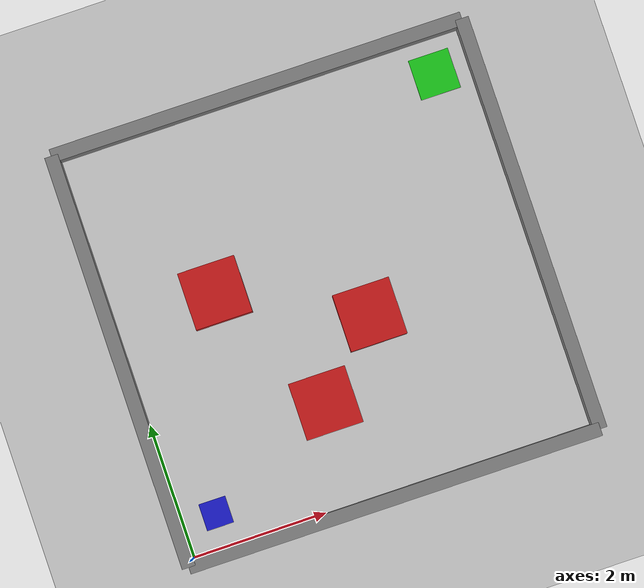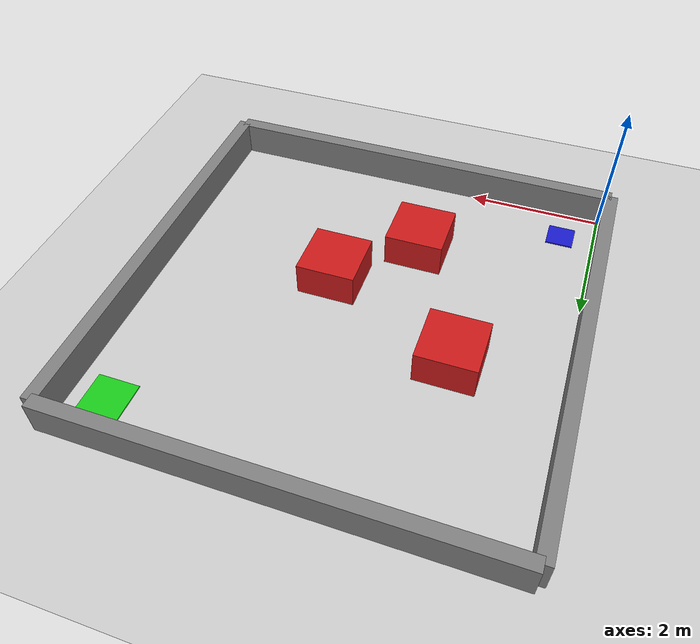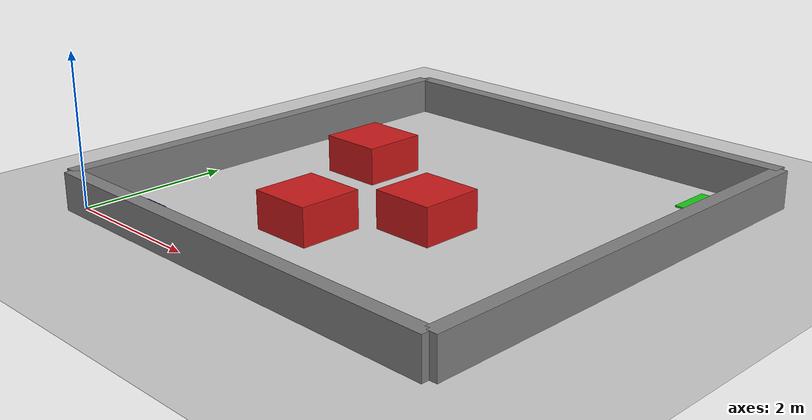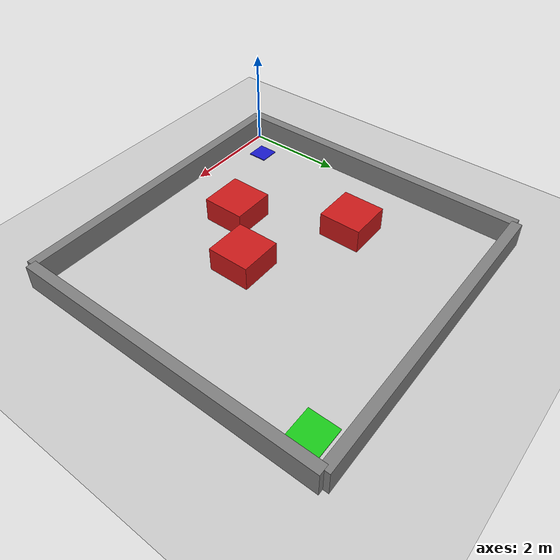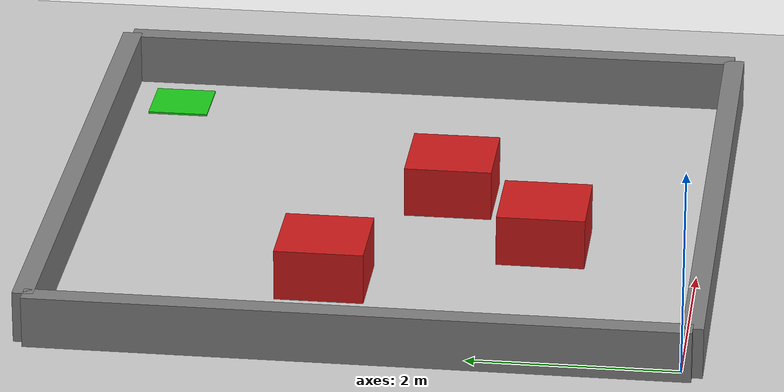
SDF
<?xml version="1.0" ?>
<sdf version="1.6">
  <world name="dstarlite_maze">

    <physics name="default_physics" type="ode">
      <max_step_size>0.001</max_step_size>
      <real_time_factor>1.0</real_time_factor>
    </physics>

    <!-- Lighting -->
    <light name="sun" type="directional">
      <cast_shadows>true</cast_shadows>
      <pose>0 0 10 0 0 0</pose>
      <diffuse>1 1 1 1</diffuse>
      <specular>0.5 0.5 0.5 1</specular>
      <direction>-0.5 0.1 -0.9</direction>
    </light>

    <!-- Ground plane -->
    <model name="ground_plane">
      <static>true</static>
      <link name="link">
        <collision name="collision">
          <geometry><plane><normal>0 0 1</normal><size>100 100</size></plane></geometry>
        </collision>
        <visual name="visual">
          <geometry><plane><normal>0 0 1</normal><size>100 100</size></plane></geometry>
          <material>
            <ambient>0.8 0.8 0.8 1</ambient>
            <diffuse>0.8 0.8 0.8 1</diffuse>
          </material>
        </visual>
      </link>
    </model>

    <model name="wall_south">
      <static>true</static>
      <pose>3.0 -0.1 0.25 0 0 0</pose>
      <link name="link">
        <collision name="col"><geometry><box><size>6.2 0.2 0.5</size></box></geometry></collision>
        <visual name="vis">
          <geometry><box><size>6.2 0.2 0.5</size></box></geometry>
          <material><ambient>0.5 0.5 0.5 1</ambient><diffuse>0.5 0.5 0.5 1</diffuse></material>
        </visual>
      </link>
    </model>

    <model name="wall_north">
      <static>true</static>
      <pose>3.0 6.1 0.25 0 0 0</pose>
      <link name="link">
        <collision name="col"><geometry><box><size>6.2 0.2 0.5</size></box></geometry></collision>
        <visual name="vis">
          <geometry><box><size>6.2 0.2 0.5</size></box></geometry>
          <material><ambient>0.5 0.5 0.5 1</ambient><diffuse>0.5 0.5 0.5 1</diffuse></material>
        </visual>
      </link>
    </model>

    <model name="wall_west">
      <static>true</static>
      <pose>-0.1 3.0 0.25 0 0 0</pose>
      <link name="link">
        <collision name="col"><geometry><box><size>0.2 6.2 0.5</size></box></geometry></collision>
        <visual name="vis">
          <geometry><box><size>0.2 6.2 0.5</size></box></geometry>
          <material><ambient>0.5 0.5 0.5 1</ambient><diffuse>0.5 0.5 0.5 1</diffuse></material>
        </visual>
      </link>
    </model>

    <model name="wall_east">
      <static>true</static>
      <pose>6.1 3.0 0.25 0 0 0</pose>
      <link name="link">
        <collision name="col"><geometry><box><size>0.2 6.2 0.5</size></box></geometry></collision>
        <visual name="vis">
          <geometry><box><size>0.2 6.2 0.5</size></box></geometry>
          <material><ambient>0.5 0.5 0.5 1</ambient><diffuse>0.5 0.5 0.5 1</diffuse></material>
        </visual>
      </link>
    </model>

    <model name="obstacle_1">
      <static>true</static>
      <pose>2.5 1.5 0.25 0 0 0</pose>
      <link name="link">
        <collision name="col"><geometry><box><size>0.85 0.85 0.5</size></box></geometry></collision>
        <visual name="vis">
          <geometry><box><size>0.85 0.85 0.5</size></box></geometry>
          <material><ambient>0.8 0.1 0.1 1</ambient><diffuse>0.8 0.1 0.1 1</diffuse></material>
        </visual>
      </link>
    </model>

    <model name="obstacle_2">
      <static>true</static>
      <pose>1.5 3.5 0.25 0 0 0</pose>
      <link name="link">
        <collision name="col"><geometry><box><size>0.85 0.85 0.5</size></box></geometry></collision>
        <visual name="vis">
          <geometry><box><size>0.85 0.85 0.5</size></box></geometry>
          <material><ambient>0.8 0.1 0.1 1</ambient><diffuse>0.8 0.1 0.1 1</diffuse></material>
        </visual>
      </link>
    </model>

    <model name="obstacle_3">
      <static>true</static>
      <pose>3.5 2.5 0.25 0 0 0</pose>
      <link name="link">
        <collision name="col"><geometry><box><size>0.85 0.85 0.5</size></box></geometry></collision>
        <visual name="vis">
          <geometry><box><size>0.85 0.85 0.5</size></box></geometry>
          <material><ambient>0.8 0.1 0.1 1</ambient><diffuse>0.8 0.1 0.1 1</diffuse></material>
        </visual>
      </link>
    </model>

    <!-- Goal marker: green flat box at cell (5,5) center = (5.5, 5.5) -->
    <model name="goal_marker">
      <static>true</static>
      <pose>5.5 5.5 0.01 0 0 0</pose>
      <link name="link">
        <visual name="vis">
          <geometry><box><size>0.6 0.6 0.02</size></box></geometry>
          <material><ambient>0.1 0.8 0.1 1</ambient><diffuse>0.1 0.8 0.1 1</diffuse></material>
        </visual>
      </link>
    </model>

    <!-- Start marker: blue flat box at cell (0,0) center = (0.5, 0.5) -->
    <model name="start_marker">
      <static>true</static>
      <pose>0.5 0.5 0.01 0 0 0</pose>
      <link name="link">
        <visual name="vis">
          <geometry><box><size>0.4 0.4 0.02</size></box></geometry>
          <material><ambient>0.1 0.1 0.8 1</ambient><diffuse>0.1 0.1 0.8 1</diffuse></material>
        </visual>
      </link>
    </model>

    <!-- Default camera: top-down view centered on the 6x6 maze -->
    <gui fullscreen="0">
      <camera name="user_camera">
        <pose>3 3 14 0 1.5708 1.5708</pose>
        <view_controller>orbit</view_controller>
      </camera>
    </gui>

  </world>
</sdf>
